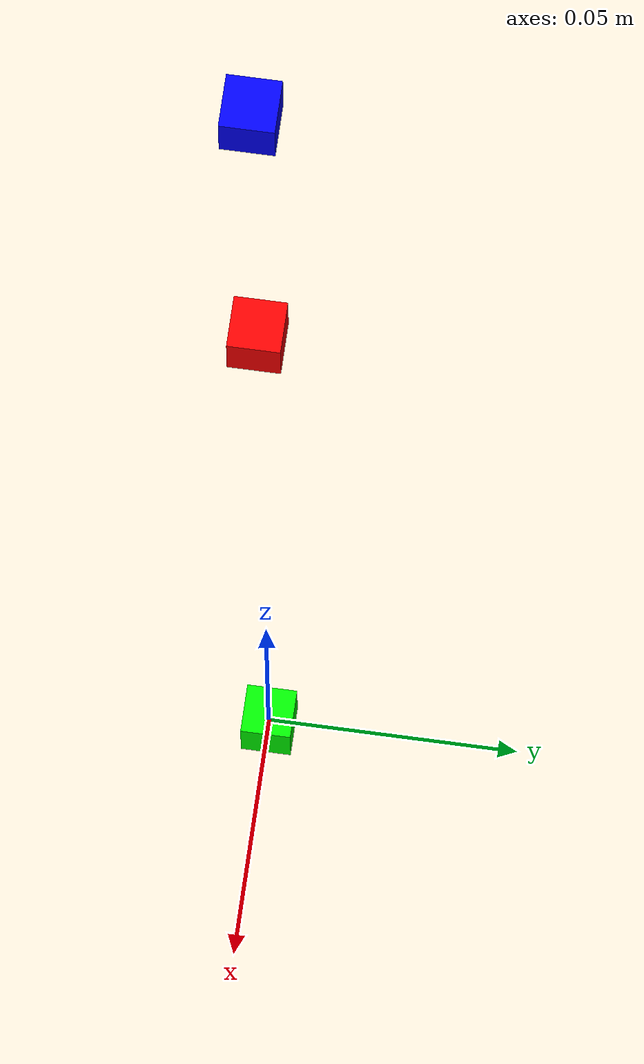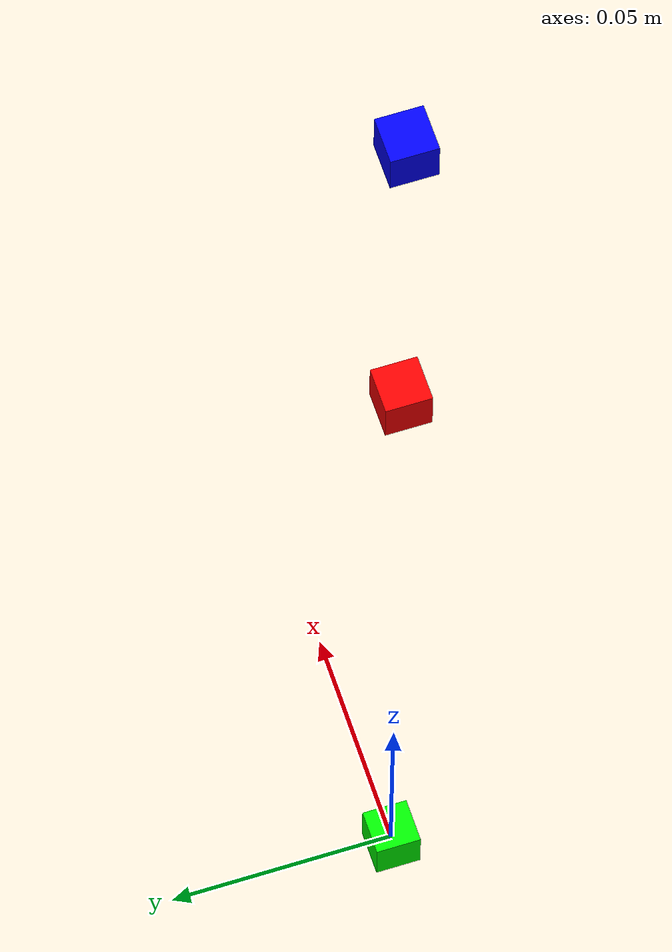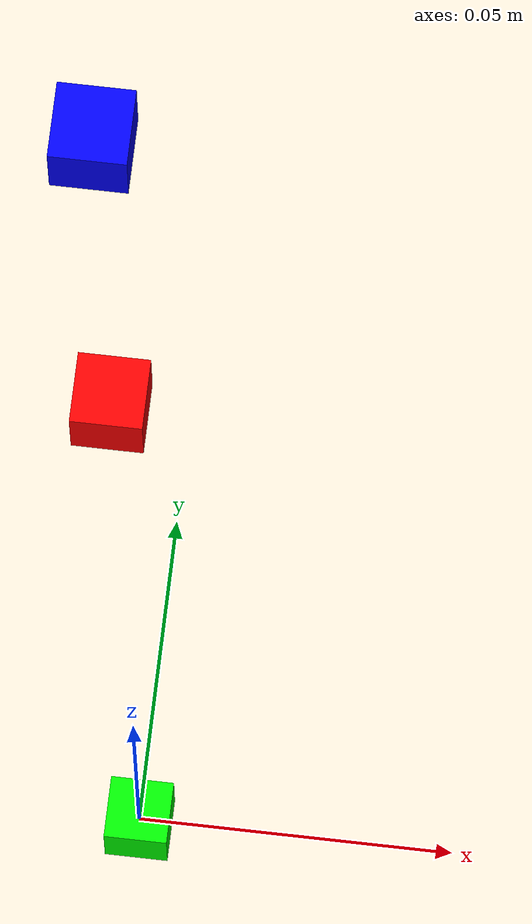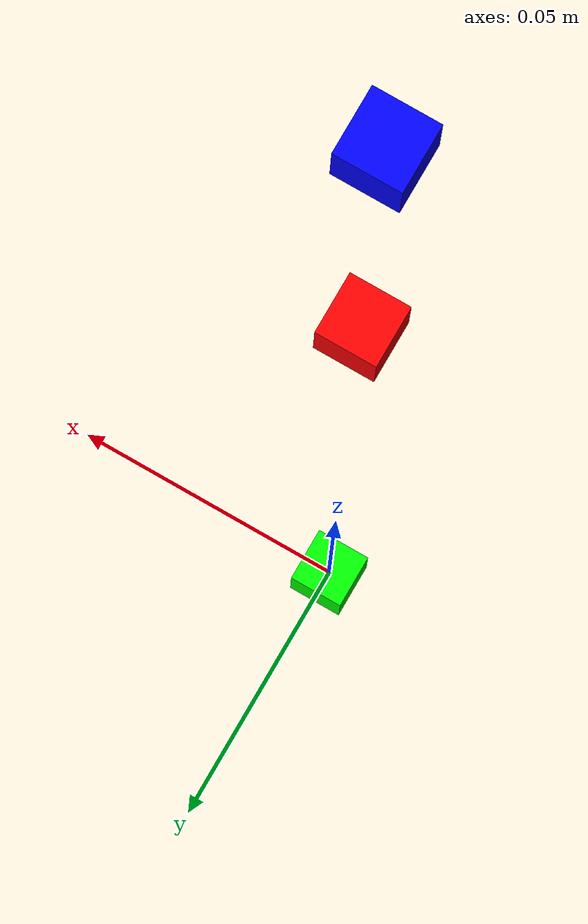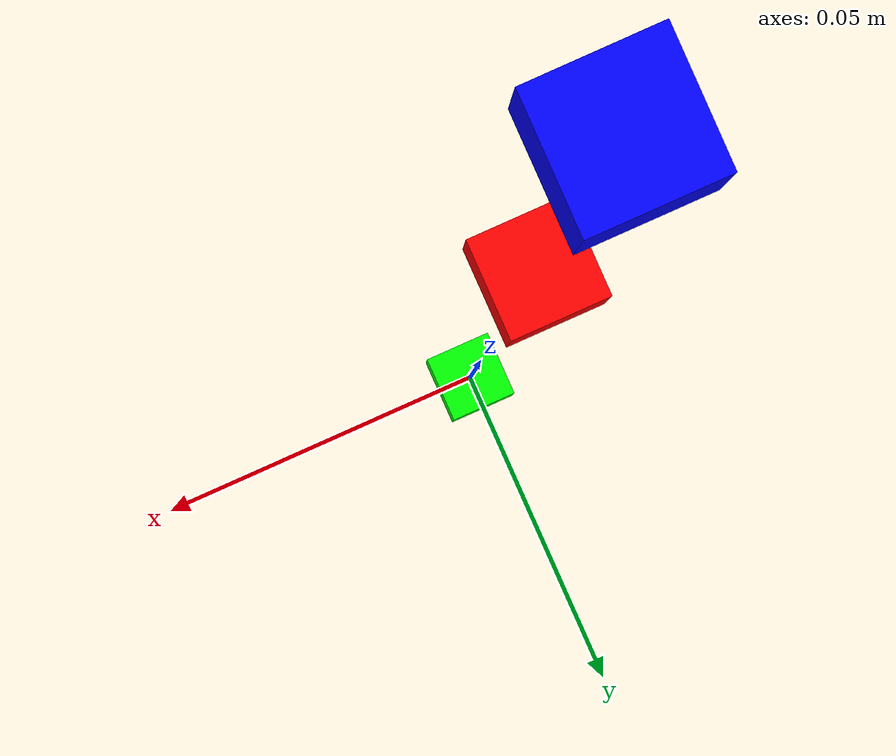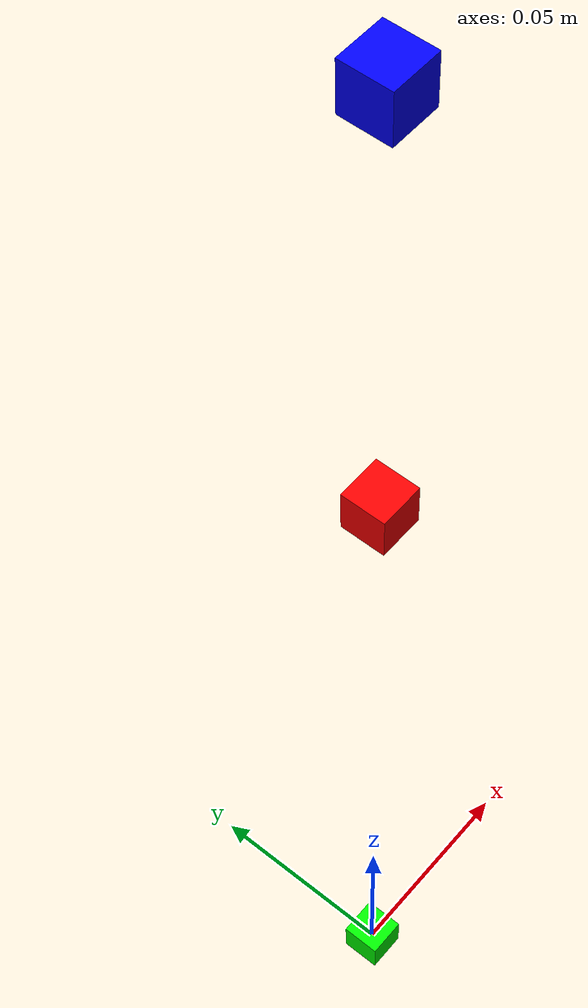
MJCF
<mujoco>
  <worldbody>
    <body name="before_traj" pos="0 0 0">
      <joint type="free"/>
      <geom type="box" size="0.005 0.005 0.005" rgba="0 1 0 1"/>
    </body>
    <body name="closest_traj" pos="0 0 0.2">
      <joint type="free"/>
      <geom type="box" size="0.005 0.005 0.005" rgba="1 0 0 1"/>
    </body>
    <body name="after_traj" pos="0 0 0.3">
      <joint type="free"/>
      <geom type="box" size="0.005 0.005 0.005" rgba="0 0 1 1"/>
    </body>
  </worldbody>

  <contact>
    <exclude name="before_closest_contact" body1="before_traj" body2="closest_traj"/>
    <exclude name="before_after_contact" body1="before_traj" body2="after_traj"/>
    <exclude name="after_closest_contact" body1="after_traj" body2="closest_traj"/>
    <exclude name="before_object_contact" body1="before_traj" body2="object"/>
    <exclude name="closest_object_contact" body1="closest_traj" body2="object"/>
    <exclude name="after_object_contact" body1="after_traj" body2="object"/>
  </contact>
</mujoco>
